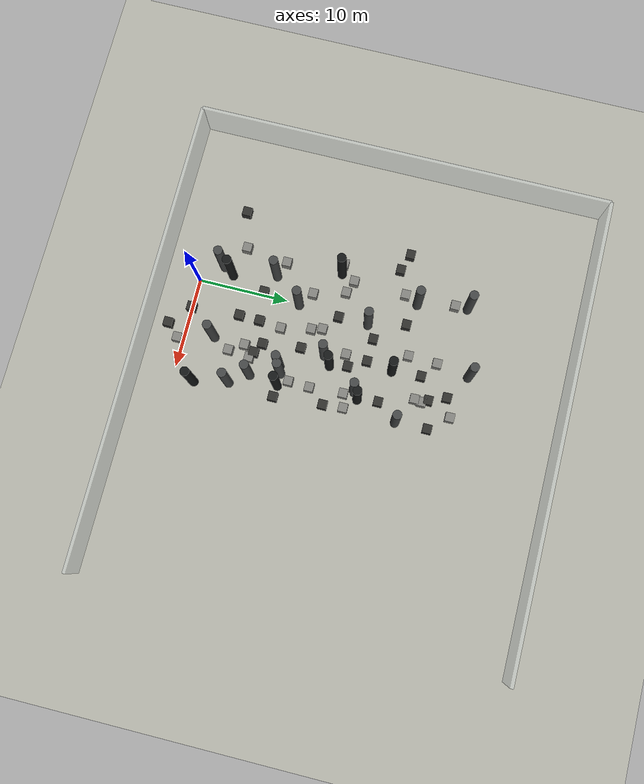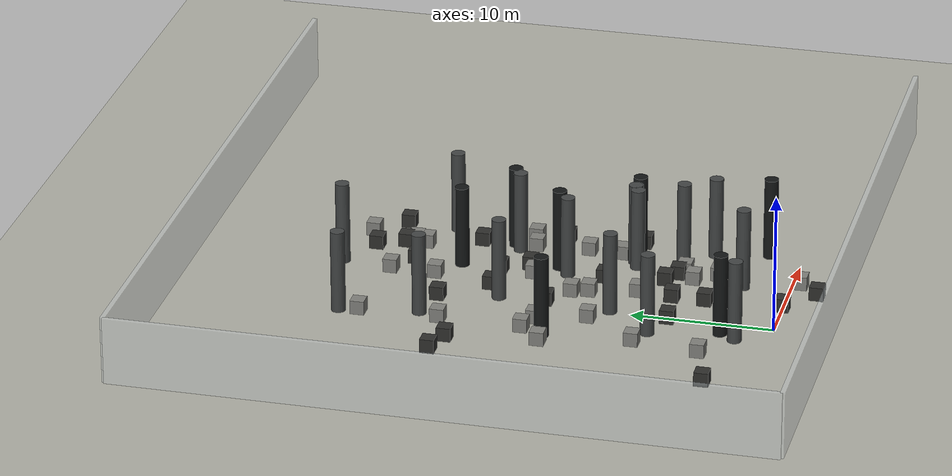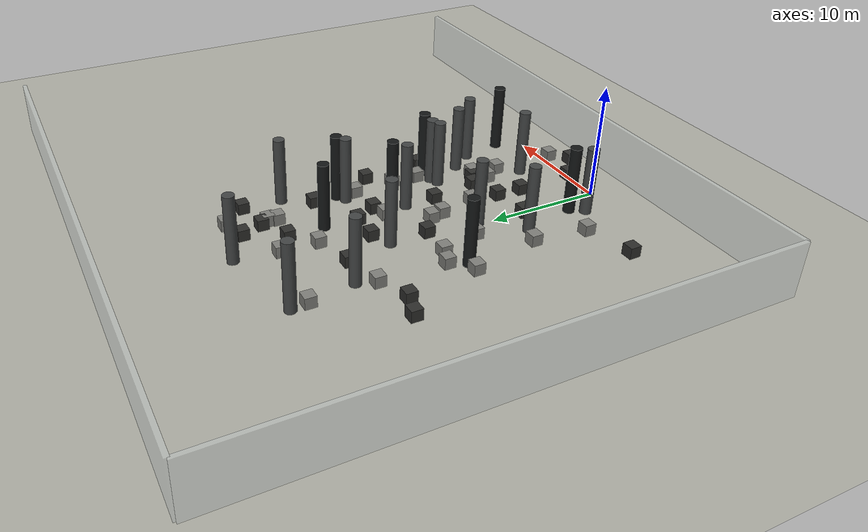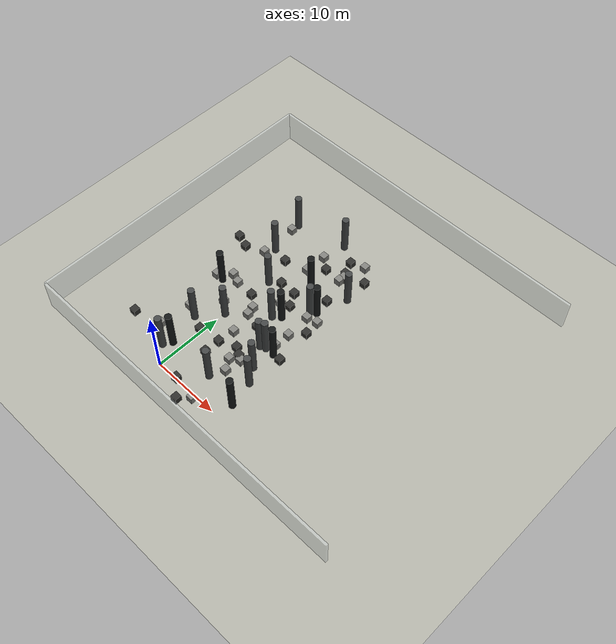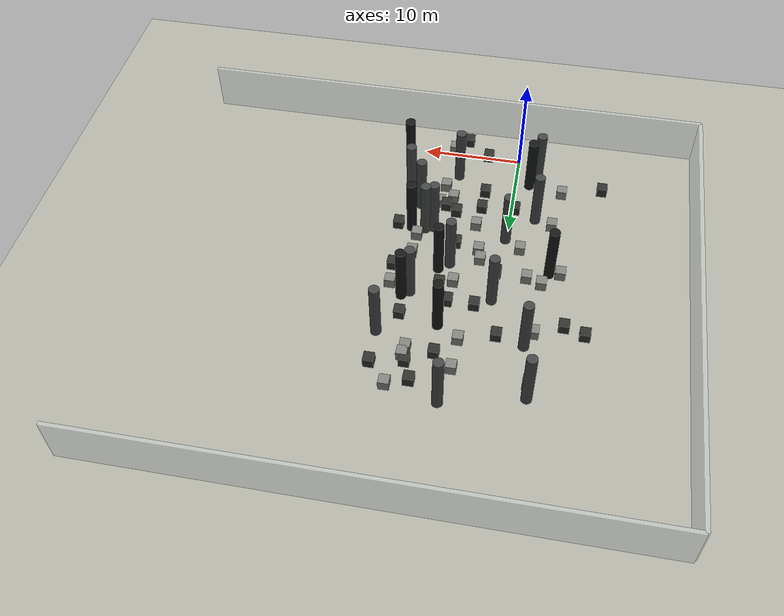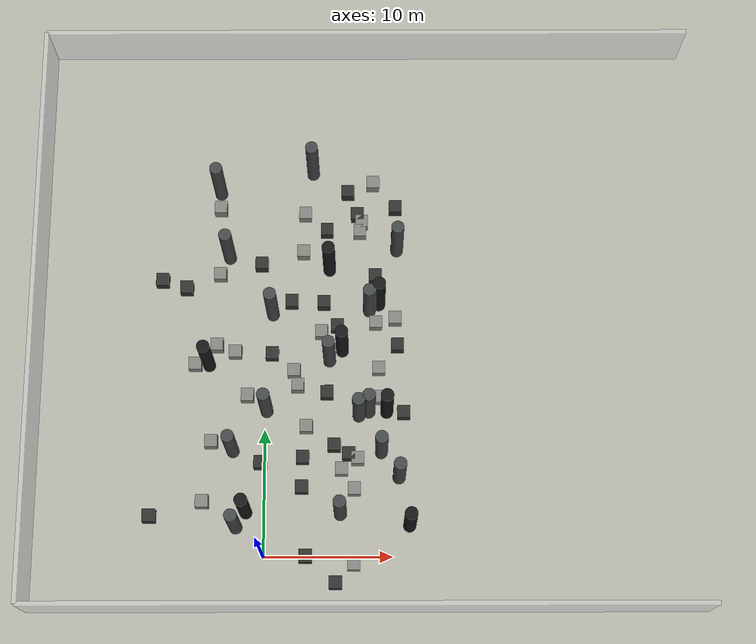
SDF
<sdf version="1.9">
 <world name="sando_forest3_walls_xtd2">
  <model name="ground_plane">
   <static>true</static>
   <link name="link">
    <collision name="collision">
     <geometry><plane><normal>0 0 1</normal><size>120 120</size></plane></geometry>
    </collision>
    <visual name="visual">
     <geometry><plane><normal>0 0 1</normal><size>120 120</size></plane></geometry>
     <material><ambient>0.68 0.68 0.64 1</ambient><diffuse>0.68 0.68 0.64 1</diffuse></material>
    </visual>
   </link>
  </model>
  <model name="struct_pillar_000">
   <static>true</static>
   <pose>9.561 11.396 3.000 0 0 0</pose>
   <link name="link">
    <collision name="collision">
     <geometry><cylinder><radius>0.500</radius><length>6.000</length></cylinder></geometry>
    </collision>
    <visual name="visual">
     <geometry><cylinder><radius>0.500</radius><length>6.000</length></cylinder></geometry>
     <material><ambient>0.08 0.09 0.09 1</ambient><diffuse>0.08 0.09 0.09 1</diffuse></material>
    </visual>
   </link>
  </model>
  <model name="struct_pillar_001">
   <static>true</static>
   <pose>9.126 8.172 3.000 0 0 0</pose>
   <link name="link">
    <collision name="collision">
     <geometry><cylinder><radius>0.500</radius><length>6.000</length></cylinder></geometry>
    </collision>
    <visual name="visual">
     <geometry><cylinder><radius>0.500</radius><length>6.000</length></cylinder></geometry>
     <material><ambient>0.26 0.27 0.27 1</ambient><diffuse>0.26 0.27 0.27 1</diffuse></material>
    </visual>
   </link>
  </model>
  <model name="struct_pillar_002">
   <static>true</static>
   <pose>10.505 6.164 3.000 0 0 0</pose>
   <link name="link">
    <collision name="collision">
     <geometry><cylinder><radius>0.500</radius><length>6.000</length></cylinder></geometry>
    </collision>
    <visual name="visual">
     <geometry><cylinder><radius>0.500</radius><length>6.000</length></cylinder></geometry>
     <material><ambient>0.26 0.27 0.27 1</ambient><diffuse>0.26 0.27 0.27 1</diffuse></material>
    </visual>
   </link>
  </model>
  <model name="struct_pillar_006">
   <static>true</static>
   <pose>11.294 2.418 3.000 0 0 0</pose>
   <link name="link">
    <collision name="collision">
     <geometry><cylinder><radius>0.500</radius><length>6.000</length></cylinder></geometry>
    </collision>
    <visual name="visual">
     <geometry><cylinder><radius>0.500</radius><length>6.000</length></cylinder></geometry>
     <material><ambient>0.08 0.09 0.09 1</ambient><diffuse>0.08 0.09 0.09 1</diffuse></material>
    </visual>
   </link>
  </model>
  <model name="struct_pillar_011">
   <static>true</static>
   <pose>5.940 3.315 3.000 0 0 0</pose>
   <link name="link">
    <collision name="collision">
     <geometry><cylinder><radius>0.500</radius><length>6.000</length></cylinder></geometry>
    </collision>
    <visual name="visual">
     <geometry><cylinder><radius>0.500</radius><length>6.000</length></cylinder></geometry>
     <material><ambient>0.26 0.27 0.27 1</ambient><diffuse>0.26 0.27 0.27 1</diffuse></material>
    </visual>
   </link>
  </model>
  <model name="struct_pillar_013">
   <static>true</static>
   <pose>5.056 15.573 3.000 0 0 0</pose>
   <link name="link">
    <collision name="collision">
     <geometry><cylinder><radius>0.500</radius><length>6.000</length></cylinder></geometry>
    </collision>
    <visual name="visual">
     <geometry><cylinder><radius>0.500</radius><length>6.000</length></cylinder></geometry>
     <material><ambient>0.26 0.27 0.27 1</ambient><diffuse>0.26 0.27 0.27 1</diffuse></material>
    </visual>
   </link>
  </model>
  <model name="struct_pillar_014">
   <static>true</static>
   <pose>8.215 19.708 3.000 0 0 0</pose>
   <link name="link">
    <collision name="collision">
     <geometry><cylinder><radius>0.500</radius><length>6.000</length></cylinder></geometry>
    </collision>
    <visual name="visual">
     <geometry><cylinder><radius>0.500</radius><length>6.000</length></cylinder></geometry>
     <material><ambient>0.26 0.27 0.27 1</ambient><diffuse>0.26 0.27 0.27 1</diffuse></material>
    </visual>
   </link>
  </model>
  <model name="struct_pillar_018">
   <static>true</static>
   <pose>5.020 23.151 3.000 0 0 0</pose>
   <link name="link">
    <collision name="collision">
     <geometry><cylinder><radius>0.500</radius><length>6.000</length></cylinder></geometry>
    </collision>
    <visual name="visual">
     <geometry><cylinder><radius>0.500</radius><length>6.000</length></cylinder></geometry>
     <material><ambient>0.08 0.09 0.09 1</ambient><diffuse>0.08 0.09 0.09 1</diffuse></material>
    </visual>
   </link>
  </model>
  <model name="struct_pillar_019">
   <static>true</static>
   <pose>10.430 24.790 3.000 0 0 0</pose>
   <link name="link">
    <collision name="collision">
     <geometry><cylinder><radius>0.500</radius><length>6.000</length></cylinder></geometry>
    </collision>
    <visual name="visual">
     <geometry><cylinder><radius>0.500</radius><length>6.000</length></cylinder></geometry>
     <material><ambient>0.26 0.27 0.27 1</ambient><diffuse>0.26 0.27 0.27 1</diffuse></material>
    </visual>
   </link>
  </model>
  <model name="struct_pillar_022">
   <static>true</static>
   <pose>0.522 19.400 3.000 0 0 0</pose>
   <link name="link">
    <collision name="collision">
     <geometry><cylinder><radius>0.500</radius><length>6.000</length></cylinder></geometry>
    </collision>
    <visual name="visual">
     <geometry><cylinder><radius>0.500</radius><length>6.000</length></cylinder></geometry>
     <material><ambient>0.26 0.27 0.27 1</ambient><diffuse>0.26 0.27 0.27 1</diffuse></material>
    </visual>
   </link>
  </model>
  <model name="struct_pillar_023">
   <static>true</static>
   <pose>0.138 11.468 3.000 0 0 0</pose>
   <link name="link">
    <collision name="collision">
     <geometry><cylinder><radius>0.500</radius><length>6.000</length></cylinder></geometry>
    </collision>
    <visual name="visual">
     <geometry><cylinder><radius>0.500</radius><length>6.000</length></cylinder></geometry>
     <material><ambient>0.26 0.27 0.27 1</ambient><diffuse>0.26 0.27 0.27 1</diffuse></material>
    </visual>
   </link>
  </model>
  <model name="struct_pillar_024">
   <static>true</static>
   <pose>-4.486 15.211 3.000 0 0 0</pose>
   <link name="link">
    <collision name="collision">
     <geometry><cylinder><radius>0.500</radius><length>6.000</length></cylinder></geometry>
    </collision>
    <visual name="visual">
     <geometry><cylinder><radius>0.500</radius><length>6.000</length></cylinder></geometry>
     <material><ambient>0.08 0.09 0.09 1</ambient><diffuse>0.08 0.09 0.09 1</diffuse></material>
    </visual>
   </link>
  </model>
  <model name="struct_pillar_025">
   <static>true</static>
   <pose>-2.478 8.271 3.000 0 0 0</pose>
   <link name="link">
    <collision name="collision">
     <geometry><cylinder><radius>0.500</radius><length>6.000</length></cylinder></geometry>
    </collision>
    <visual name="visual">
     <geometry><cylinder><radius>0.500</radius><length>6.000</length></cylinder></geometry>
     <material><ambient>0.26 0.27 0.27 1</ambient><diffuse>0.26 0.27 0.27 1</diffuse></material>
    </visual>
   </link>
  </model>
  <model name="struct_pillar_026">
   <static>true</static>
   <pose>-2.134 2.286 3.000 0 0 0</pose>
   <link name="link">
    <collision name="collision">
     <geometry><cylinder><radius>0.500</radius><length>6.000</length></cylinder></geometry>
    </collision>
    <visual name="visual">
     <geometry><cylinder><radius>0.500</radius><length>6.000</length></cylinder></geometry>
     <material><ambient>0.26 0.27 0.27 1</ambient><diffuse>0.26 0.27 0.27 1</diffuse></material>
    </visual>
   </link>
  </model>
  <model name="struct_pillar_028">
   <static>true</static>
   <pose>-3.852 29.699 3.000 0 0 0</pose>
   <link name="link">
    <collision name="collision">
     <geometry><cylinder><radius>0.500</radius><length>6.000</length></cylinder></geometry>
    </collision>
    <visual name="visual">
     <geometry><cylinder><radius>0.500</radius><length>6.000</length></cylinder></geometry>
     <material><ambient>0.26 0.27 0.27 1</ambient><diffuse>0.26 0.27 0.27 1</diffuse></material>
    </visual>
   </link>
  </model>
  <model name="struct_pillar_029">
   <static>true</static>
   <pose>3.662 31.429 3.000 0 0 0</pose>
   <link name="link">
    <collision name="collision">
     <geometry><cylinder><radius>0.500</radius><length>6.000</length></cylinder></geometry>
    </collision>
    <visual name="visual">
     <geometry><cylinder><radius>0.500</radius><length>6.000</length></cylinder></geometry>
     <material><ambient>0.26 0.27 0.27 1</ambient><diffuse>0.26 0.27 0.27 1</diffuse></material>
    </visual>
   </link>
  </model>
  <model name="struct_pillar_032">
   <static>true</static>
   <pose>-3.017 24.173 3.000 0 0 0</pose>
   <link name="link">
    <collision name="collision">
     <geometry><cylinder><radius>0.500</radius><length>6.000</length></cylinder></geometry>
    </collision>
    <visual name="visual">
     <geometry><cylinder><radius>0.500</radius><length>6.000</length></cylinder></geometry>
     <material><ambient>0.26 0.27 0.27 1</ambient><diffuse>0.26 0.27 0.27 1</diffuse></material>
    </visual>
   </link>
  </model>
  <model name="struct_pillar_033">
   <static>true</static>
   <pose>-1.391 3.447 3.000 0 0 0</pose>
   <link name="link">
    <collision name="collision">
     <geometry><cylinder><radius>0.500</radius><length>6.000</length></cylinder></geometry>
    </collision>
    <visual name="visual">
     <geometry><cylinder><radius>0.500</radius><length>6.000</length></cylinder></geometry>
     <material><ambient>0.08 0.09 0.09 1</ambient><diffuse>0.08 0.09 0.09 1</diffuse></material>
    </visual>
   </link>
  </model>
  <model name="struct_pillar_036">
   <static>true</static>
   <pose>8.971 20.227 3.000 0 0 0</pose>
   <link name="link">
    <collision name="collision">
     <geometry><cylinder><radius>0.500</radius><length>6.000</length></cylinder></geometry>
    </collision>
    <visual name="visual">
     <geometry><cylinder><radius>0.500</radius><length>6.000</length></cylinder></geometry>
     <material><ambient>0.08 0.09 0.09 1</ambient><diffuse>0.08 0.09 0.09 1</diffuse></material>
    </visual>
   </link>
  </model>
  <model name="struct_pillar_039">
   <static>true</static>
   <pose>6.059 16.394 3.000 0 0 0</pose>
   <link name="link">
    <collision name="collision">
     <geometry><cylinder><radius>0.500</radius><length>6.000</length></cylinder></geometry>
    </collision>
    <visual name="visual">
     <geometry><cylinder><radius>0.500</radius><length>6.000</length></cylinder></geometry>
     <material><ambient>0.08 0.09 0.09 1</ambient><diffuse>0.08 0.09 0.09 1</diffuse></material>
    </visual>
   </link>
  </model>
  <model name="struct_pillar_040">
   <static>true</static>
   <pose>7.382 11.106 3.000 0 0 0</pose>
   <link name="link">
    <collision name="collision">
     <geometry><cylinder><radius>0.500</radius><length>6.000</length></cylinder></geometry>
    </collision>
    <visual name="visual">
     <geometry><cylinder><radius>0.500</radius><length>6.000</length></cylinder></geometry>
     <material><ambient>0.26 0.27 0.27 1</ambient><diffuse>0.26 0.27 0.27 1</diffuse></material>
    </visual>
   </link>
  </model>
  <model name="struct_pillar_041">
   <static>true</static>
   <pose>8.165 11.423 3.000 0 0 0</pose>
   <link name="link">
    <collision name="collision">
     <geometry><cylinder><radius>0.500</radius><length>6.000</length></cylinder></geometry>
    </collision>
    <visual name="visual">
     <geometry><cylinder><radius>0.500</radius><length>6.000</length></cylinder></geometry>
     <material><ambient>0.26 0.27 0.27 1</ambient><diffuse>0.26 0.27 0.27 1</diffuse></material>
    </visual>
   </link>
  </model>
  <model name="struct_wall_042">
   <static>true</static>
   <pose>10.445 16.734 0.500 0 0 0</pose>
   <link name="link">
    <collision name="collision"><geometry><box><size>1.000 1.000 1.000</size></box></geometry></collision>
    <visual name="visual">
     <geometry><box><size>1.000 1.000 1.000</size></box></geometry>
     <material><ambient>0.18 0.18 0.17 1</ambient><diffuse>0.18 0.18 0.17 1</diffuse></material>
    </visual>
   </link>
  </model>
  <model name="struct_wall_043">
   <static>true</static>
   <pose>8.931 14.858 0.500 0 0 0</pose>
   <link name="link">
    <collision name="collision"><geometry><box><size>1.000 1.000 1.000</size></box></geometry></collision>
    <visual name="visual">
     <geometry><box><size>1.000 1.000 1.000</size></box></geometry>
     <material><ambient>0.50 0.50 0.48 1</ambient><diffuse>0.50 0.50 0.48 1</diffuse></material>
    </visual>
   </link>
  </model>
  <model name="struct_wall_050">
   <static>true</static>
   <pose>2.985 7.695 0.500 0 0 0</pose>
   <link name="link">
    <collision name="collision"><geometry><box><size>1.000 1.000 1.000</size></box></geometry></collision>
    <visual name="visual">
     <geometry><box><size>1.000 1.000 1.000</size></box></geometry>
     <material><ambient>0.18 0.18 0.17 1</ambient><diffuse>0.18 0.18 0.17 1</diffuse></material>
    </visual>
   </link>
  </model>
  <model name="struct_wall_051">
   <static>true</static>
   <pose>-1.405 12.678 0.500 0 0 0</pose>
   <link name="link">
    <collision name="collision"><geometry><box><size>1.000 1.000 1.000</size></box></geometry></collision>
    <visual name="visual">
     <geometry><box><size>1.000 1.000 1.000</size></box></geometry>
     <material><ambient>0.50 0.50 0.48 1</ambient><diffuse>0.50 0.50 0.48 1</diffuse></material>
    </visual>
   </link>
  </model>
  <model name="struct_wall_052">
   <static>true</static>
   <pose>-0.313 7.316 0.500 0 0 0</pose>
   <link name="link">
    <collision name="collision"><geometry><box><size>1.000 1.000 1.000</size></box></geometry></collision>
    <visual name="visual">
     <geometry><box><size>1.000 1.000 1.000</size></box></geometry>
     <material><ambient>0.18 0.18 0.17 1</ambient><diffuse>0.18 0.18 0.17 1</diffuse></material>
    </visual>
   </link>
  </model>
  <model name="struct_wall_053">
   <static>true</static>
   <pose>4.401 17.867 0.500 0 0 0</pose>
   <link name="link">
    <collision name="collision"><geometry><box><size>1.000 1.000 1.000</size></box></geometry></collision>
    <visual name="visual">
     <geometry><box><size>1.000 1.000 1.000</size></box></geometry>
     <material><ambient>0.50 0.50 0.48 1</ambient><diffuse>0.50 0.50 0.48 1</diffuse></material>
    </visual>
   </link>
  </model>
  <model name="struct_wall_054">
   <static>true</static>
   <pose>8.699 22.509 0.500 0 0 0</pose>
   <link name="link">
    <collision name="collision"><geometry><box><size>1.000 1.000 1.000</size></box></geometry></collision>
    <visual name="visual">
     <geometry><box><size>1.000 1.000 1.000</size></box></geometry>
     <material><ambient>0.18 0.18 0.17 1</ambient><diffuse>0.18 0.18 0.17 1</diffuse></material>
    </visual>
   </link>
  </model>
  <model name="struct_wall_055">
   <static>true</static>
   <pose>2.932 24.547 0.500 0 0 0</pose>
   <link name="link">
    <collision name="collision"><geometry><box><size>1.000 1.000 1.000</size></box></geometry></collision>
    <visual name="visual">
     <geometry><box><size>1.000 1.000 1.000</size></box></geometry>
     <material><ambient>0.50 0.50 0.48 1</ambient><diffuse>0.50 0.50 0.48 1</diffuse></material>
    </visual>
   </link>
  </model>
  <model name="struct_wall_056">
   <static>true</static>
   <pose>2.027 20.363 0.500 0 0 0</pose>
   <link name="link">
    <collision name="collision"><geometry><box><size>1.000 1.000 1.000</size></box></geometry></collision>
    <visual name="visual">
     <geometry><box><size>1.000 1.000 1.000</size></box></geometry>
     <material><ambient>0.18 0.18 0.17 1</ambient><diffuse>0.18 0.18 0.17 1</diffuse></material>
    </visual>
   </link>
  </model>
  <model name="struct_wall_057">
   <static>true</static>
   <pose>2.557 13.479 0.500 0 0 0</pose>
   <link name="link">
    <collision name="collision"><geometry><box><size>1.000 1.000 1.000</size></box></geometry></collision>
    <visual name="visual">
     <geometry><box><size>1.000 1.000 1.000</size></box></geometry>
     <material><ambient>0.50 0.50 0.48 1</ambient><diffuse>0.50 0.50 0.48 1</diffuse></material>
    </visual>
   </link>
  </model>
  <model name="struct_wall_066">
   <static>true</static>
   <pose>5.442 8.686 0.500 0 0 0</pose>
   <link name="link">
    <collision name="collision"><geometry><box><size>1.000 1.000 1.000</size></box></geometry></collision>
    <visual name="visual">
     <geometry><box><size>1.000 1.000 1.000</size></box></geometry>
     <material><ambient>0.18 0.18 0.17 1</ambient><diffuse>0.18 0.18 0.17 1</diffuse></material>
    </visual>
   </link>
  </model>
  <model name="struct_wall_067">
   <static>true</static>
   <pose>7.008 5.231 0.500 0 0 0</pose>
   <link name="link">
    <collision name="collision"><geometry><box><size>1.000 1.000 1.000</size></box></geometry></collision>
    <visual name="visual">
     <geometry><box><size>1.000 1.000 1.000</size></box></geometry>
     <material><ambient>0.50 0.50 0.48 1</ambient><diffuse>0.50 0.50 0.48 1</diffuse></material>
    </visual>
   </link>
  </model>
  <model name="struct_wall_068">
   <static>true</static>
   <pose>3.265 0.011 0.500 0 0 0</pose>
   <link name="link">
    <collision name="collision"><geometry><box><size>1.000 1.000 1.000</size></box></geometry></collision>
    <visual name="visual">
     <geometry><box><size>1.000 1.000 1.000</size></box></geometry>
     <material><ambient>0.18 0.18 0.17 1</ambient><diffuse>0.18 0.18 0.17 1</diffuse></material>
    </visual>
   </link>
  </model>
  <model name="struct_wall_069">
   <static>true</static>
   <pose>6.977 -0.585 0.500 0 0 0</pose>
   <link name="link">
    <collision name="collision"><geometry><box><size>1.000 1.000 1.000</size></box></geometry></collision>
    <visual name="visual">
     <geometry><box><size>1.000 1.000 1.000</size></box></geometry>
     <material><ambient>0.50 0.50 0.48 1</ambient><diffuse>0.50 0.50 0.48 1</diffuse></material>
    </visual>
   </link>
  </model>
  <model name="struct_wall_070">
   <static>true</static>
   <pose>5.588 -2.000 0.500 0 0 0</pose>
   <link name="link">
    <collision name="collision"><geometry><box><size>1.000 1.000 1.000</size></box></geometry></collision>
    <visual name="visual">
     <geometry><box><size>1.000 1.000 1.000</size></box></geometry>
     <material><ambient>0.18 0.18 0.17 1</ambient><diffuse>0.18 0.18 0.17 1</diffuse></material>
    </visual>
   </link>
  </model>
  <model name="struct_wall_071">
   <static>true</static>
   <pose>-4.784 4.257 0.500 0 0 0</pose>
   <link name="link">
    <collision name="collision"><geometry><box><size>1.000 1.000 1.000</size></box></geometry></collision>
    <visual name="visual">
     <geometry><box><size>1.000 1.000 1.000</size></box></geometry>
     <material><ambient>0.50 0.50 0.48 1</ambient><diffuse>0.50 0.50 0.48 1</diffuse></material>
    </visual>
   </link>
  </model>
  <model name="struct_wall_072">
   <static>true</static>
   <pose>-8.835 3.134 0.500 0 0 0</pose>
   <link name="link">
    <collision name="collision"><geometry><box><size>1.000 1.000 1.000</size></box></geometry></collision>
    <visual name="visual">
     <geometry><box><size>1.000 1.000 1.000</size></box></geometry>
     <material><ambient>0.18 0.18 0.17 1</ambient><diffuse>0.18 0.18 0.17 1</diffuse></material>
    </visual>
   </link>
  </model>
  <model name="struct_wall_073">
   <static>true</static>
   <pose>-4.178 8.983 0.500 0 0 0</pose>
   <link name="link">
    <collision name="collision"><geometry><box><size>1.000 1.000 1.000</size></box></geometry></collision>
    <visual name="visual">
     <geometry><box><size>1.000 1.000 1.000</size></box></geometry>
     <material><ambient>0.50 0.50 0.48 1</ambient><diffuse>0.50 0.50 0.48 1</diffuse></material>
    </visual>
   </link>
  </model>
  <model name="struct_wall_089">
   <static>true</static>
   <pose>10.257 18.967 0.500 0 0 0</pose>
   <link name="link">
    <collision name="collision"><geometry><box><size>1.000 1.000 1.000</size></box></geometry></collision>
    <visual name="visual">
     <geometry><box><size>1.000 1.000 1.000</size></box></geometry>
     <material><ambient>0.50 0.50 0.48 1</ambient><diffuse>0.50 0.50 0.48 1</diffuse></material>
    </visual>
   </link>
  </model>
  <model name="struct_wall_096">
   <static>true</static>
   <pose>10.882 11.281 0.500 0 0 0</pose>
   <link name="link">
    <collision name="collision"><geometry><box><size>1.000 1.000 1.000</size></box></geometry></collision>
    <visual name="visual">
     <geometry><box><size>1.000 1.000 1.000</size></box></geometry>
     <material><ambient>0.18 0.18 0.17 1</ambient><diffuse>0.18 0.18 0.17 1</diffuse></material>
    </visual>
   </link>
  </model>
  <model name="struct_wall_097">
   <static>true</static>
   <pose>7.290 7.633 0.500 0 0 0</pose>
   <link name="link">
    <collision name="collision"><geometry><box><size>1.000 1.000 1.000</size></box></geometry></collision>
    <visual name="visual">
     <geometry><box><size>1.000 1.000 1.000</size></box></geometry>
     <material><ambient>0.50 0.50 0.48 1</ambient><diffuse>0.50 0.50 0.48 1</diffuse></material>
    </visual>
   </link>
  </model>
  <model name="struct_wall_098">
   <static>true</static>
   <pose>6.584 7.994 0.500 0 0 0</pose>
   <link name="link">
    <collision name="collision"><geometry><box><size>1.000 1.000 1.000</size></box></geometry></collision>
    <visual name="visual">
     <geometry><box><size>1.000 1.000 1.000</size></box></geometry>
     <material><ambient>0.18 0.18 0.17 1</ambient><diffuse>0.18 0.18 0.17 1</diffuse></material>
    </visual>
   </link>
  </model>
  <model name="struct_wall_099">
   <static>true</static>
   <pose>6.025 6.799 0.500 0 0 0</pose>
   <link name="link">
    <collision name="collision"><geometry><box><size>1.000 1.000 1.000</size></box></geometry></collision>
    <visual name="visual">
     <geometry><box><size>1.000 1.000 1.000</size></box></geometry>
     <material><ambient>0.50 0.50 0.48 1</ambient><diffuse>0.50 0.50 0.48 1</diffuse></material>
    </visual>
   </link>
  </model>
  <model name="struct_wall_100">
   <static>true</static>
   <pose>2.929 5.377 0.500 0 0 0</pose>
   <link name="link">
    <collision name="collision"><geometry><box><size>1.000 1.000 1.000</size></box></geometry></collision>
    <visual name="visual">
     <geometry><box><size>1.000 1.000 1.000</size></box></geometry>
     <material><ambient>0.18 0.18 0.17 1</ambient><diffuse>0.18 0.18 0.17 1</diffuse></material>
    </visual>
   </link>
  </model>
  <model name="struct_wall_101">
   <static>true</static>
   <pose>3.244 10.181 0.500 0 0 0</pose>
   <link name="link">
    <collision name="collision"><geometry><box><size>1.000 1.000 1.000</size></box></geometry></collision>
    <visual name="visual">
     <geometry><box><size>1.000 1.000 1.000</size></box></geometry>
     <material><ambient>0.50 0.50 0.48 1</ambient><diffuse>0.50 0.50 0.48 1</diffuse></material>
    </visual>
   </link>
  </model>
  <model name="struct_wall_102">
   <static>true</static>
   <pose>4.869 12.895 0.500 0 0 0</pose>
   <link name="link">
    <collision name="collision"><geometry><box><size>1.000 1.000 1.000</size></box></geometry></collision>
    <visual name="visual">
     <geometry><box><size>1.000 1.000 1.000</size></box></geometry>
     <material><ambient>0.18 0.18 0.17 1</ambient><diffuse>0.18 0.18 0.17 1</diffuse></material>
    </visual>
   </link>
  </model>
  <model name="struct_wall_103">
   <static>true</static>
   <pose>-2.415 16.218 0.500 0 0 0</pose>
   <link name="link">
    <collision name="collision"><geometry><box><size>1.000 1.000 1.000</size></box></geometry></collision>
    <visual name="visual">
     <geometry><box><size>1.000 1.000 1.000</size></box></geometry>
     <material><ambient>0.50 0.50 0.48 1</ambient><diffuse>0.50 0.50 0.48 1</diffuse></material>
    </visual>
   </link>
  </model>
  <model name="struct_wall_104">
   <static>true</static>
   <pose>0.505 16.072 0.500 0 0 0</pose>
   <link name="link">
    <collision name="collision"><geometry><box><size>1.000 1.000 1.000</size></box></geometry></collision>
    <visual name="visual">
     <geometry><box><size>1.000 1.000 1.000</size></box></geometry>
     <material><ambient>0.18 0.18 0.17 1</ambient><diffuse>0.18 0.18 0.17 1</diffuse></material>
    </visual>
   </link>
  </model>
  <model name="struct_wall_105">
   <static>true</static>
   <pose>2.252 14.669 0.500 0 0 0</pose>
   <link name="link">
    <collision name="collision"><geometry><box><size>1.000 1.000 1.000</size></box></geometry></collision>
    <visual name="visual">
     <geometry><box><size>1.000 1.000 1.000</size></box></geometry>
     <material><ambient>0.50 0.50 0.48 1</ambient><diffuse>0.50 0.50 0.48 1</diffuse></material>
    </visual>
   </link>
  </model>
  <model name="struct_wall_106">
   <static>true</static>
   <pose>4.817 26.406 0.500 0 0 0</pose>
   <link name="link">
    <collision name="collision"><geometry><box><size>1.000 1.000 1.000</size></box></geometry></collision>
    <visual name="visual">
     <geometry><box><size>1.000 1.000 1.000</size></box></geometry>
     <material><ambient>0.18 0.18 0.17 1</ambient><diffuse>0.18 0.18 0.17 1</diffuse></material>
    </visual>
   </link>
  </model>
  <model name="struct_wall_107">
   <static>true</static>
   <pose>7.586 27.093 0.500 0 0 0</pose>
   <link name="link">
    <collision name="collision"><geometry><box><size>1.000 1.000 1.000</size></box></geometry></collision>
    <visual name="visual">
     <geometry><box><size>1.000 1.000 1.000</size></box></geometry>
     <material><ambient>0.50 0.50 0.48 1</ambient><diffuse>0.50 0.50 0.48 1</diffuse></material>
    </visual>
   </link>
  </model>
  <model name="struct_wall_109">
   <static>true</static>
   <pose>8.524 30.438 0.500 0 0 0</pose>
   <link name="link">
    <collision name="collision"><geometry><box><size>1.000 1.000 1.000</size></box></geometry></collision>
    <visual name="visual">
     <geometry><box><size>1.000 1.000 1.000</size></box></geometry>
     <material><ambient>0.50 0.50 0.48 1</ambient><diffuse>0.50 0.50 0.48 1</diffuse></material>
    </visual>
   </link>
  </model>
  <model name="struct_wall_112">
   <static>true</static>
   <pose>10.325 28.338 0.500 0 0 0</pose>
   <link name="link">
    <collision name="collision"><geometry><box><size>1.000 1.000 1.000</size></box></geometry></collision>
    <visual name="visual">
     <geometry><box><size>1.000 1.000 1.000</size></box></geometry>
     <material><ambient>0.18 0.18 0.17 1</ambient><diffuse>0.18 0.18 0.17 1</diffuse></material>
    </visual>
   </link>
  </model>
  <model name="struct_wall_114">
   <static>true</static>
   <pose>6.482 29.676 0.500 0 0 0</pose>
   <link name="link">
    <collision name="collision"><geometry><box><size>1.000 1.000 1.000</size></box></geometry></collision>
    <visual name="visual">
     <geometry><box><size>1.000 1.000 1.000</size></box></geometry>
     <material><ambient>0.18 0.18 0.17 1</ambient><diffuse>0.18 0.18 0.17 1</diffuse></material>
    </visual>
   </link>
  </model>
  <model name="struct_wall_115">
   <static>true</static>
   <pose>7.460 26.272 0.500 0 0 0</pose>
   <link name="link">
    <collision name="collision"><geometry><box><size>1.000 1.000 1.000</size></box></geometry></collision>
    <visual name="visual">
     <geometry><box><size>1.000 1.000 1.000</size></box></geometry>
     <material><ambient>0.50 0.50 0.48 1</ambient><diffuse>0.50 0.50 0.48 1</diffuse></material>
    </visual>
   </link>
  </model>
  <model name="struct_wall_116">
   <static>true</static>
   <pose>7.246 27.756 0.500 0 0 0</pose>
   <link name="link">
    <collision name="collision"><geometry><box><size>1.000 1.000 1.000</size></box></geometry></collision>
    <visual name="visual">
     <geometry><box><size>1.000 1.000 1.000</size></box></geometry>
     <material><ambient>0.18 0.18 0.17 1</ambient><diffuse>0.18 0.18 0.17 1</diffuse></material>
    </visual>
   </link>
  </model>
  <model name="struct_wall_117">
   <static>true</static>
   <pose>3.051 27.787 0.500 0 0 0</pose>
   <link name="link">
    <collision name="collision"><geometry><box><size>1.000 1.000 1.000</size></box></geometry></collision>
    <visual name="visual">
     <geometry><box><size>1.000 1.000 1.000</size></box></geometry>
     <material><ambient>0.50 0.50 0.48 1</ambient><diffuse>0.50 0.50 0.48 1</diffuse></material>
    </visual>
   </link>
  </model>
  <model name="struct_wall_118">
   <static>true</static>
   <pose>4.594 20.292 0.500 0 0 0</pose>
   <link name="link">
    <collision name="collision"><geometry><box><size>1.000 1.000 1.000</size></box></geometry></collision>
    <visual name="visual">
     <geometry><box><size>1.000 1.000 1.000</size></box></geometry>
     <material><ambient>0.18 0.18 0.17 1</ambient><diffuse>0.18 0.18 0.17 1</diffuse></material>
    </visual>
   </link>
  </model>
  <model name="struct_wall_119">
   <static>true</static>
   <pose>8.712 18.605 0.500 0 0 0</pose>
   <link name="link">
    <collision name="collision"><geometry><box><size>1.000 1.000 1.000</size></box></geometry></collision>
    <visual name="visual">
     <geometry><box><size>1.000 1.000 1.000</size></box></geometry>
     <material><ambient>0.50 0.50 0.48 1</ambient><diffuse>0.50 0.50 0.48 1</diffuse></material>
    </visual>
   </link>
  </model>
  <model name="struct_wall_120">
   <static>true</static>
   <pose>5.666 18.361 0.500 0 0 0</pose>
   <link name="link">
    <collision name="collision"><geometry><box><size>1.000 1.000 1.000</size></box></geometry></collision>
    <visual name="visual">
     <geometry><box><size>1.000 1.000 1.000</size></box></geometry>
     <material><ambient>0.18 0.18 0.17 1</ambient><diffuse>0.18 0.18 0.17 1</diffuse></material>
    </visual>
   </link>
  </model>
  <model name="struct_wall_121">
   <static>true</static>
   <pose>-3.735 22.663 0.500 0 0 0</pose>
   <link name="link">
    <collision name="collision"><geometry><box><size>1.000 1.000 1.000</size></box></geometry></collision>
    <visual name="visual">
     <geometry><box><size>1.000 1.000 1.000</size></box></geometry>
     <material><ambient>0.50 0.50 0.48 1</ambient><diffuse>0.50 0.50 0.48 1</diffuse></material>
    </visual>
   </link>
  </model>
  <model name="struct_wall_122">
   <static>true</static>
   <pose>-0.419 23.527 0.500 0 0 0</pose>
   <link name="link">
    <collision name="collision"><geometry><box><size>1.000 1.000 1.000</size></box></geometry></collision>
    <visual name="visual">
     <geometry><box><size>1.000 1.000 1.000</size></box></geometry>
     <material><ambient>0.18 0.18 0.17 1</ambient><diffuse>0.18 0.18 0.17 1</diffuse></material>
    </visual>
   </link>
  </model>
  <model name="struct_wall_123">
   <static>true</static>
   <pose>-3.810 28.282 0.500 0 0 0</pose>
   <link name="link">
    <collision name="collision"><geometry><box><size>1.000 1.000 1.000</size></box></geometry></collision>
    <visual name="visual">
     <geometry><box><size>1.000 1.000 1.000</size></box></geometry>
     <material><ambient>0.50 0.50 0.48 1</ambient><diffuse>0.50 0.50 0.48 1</diffuse></material>
    </visual>
   </link>
  </model>
  <model name="struct_wall_124">
   <static>true</static>
   <pose>-8.356 22.153 0.500 0 0 0</pose>
   <link name="link">
    <collision name="collision"><geometry><box><size>1.000 1.000 1.000</size></box></geometry></collision>
    <visual name="visual">
     <geometry><box><size>1.000 1.000 1.000</size></box></geometry>
     <material><ambient>0.18 0.18 0.17 1</ambient><diffuse>0.18 0.18 0.17 1</diffuse></material>
    </visual>
   </link>
  </model>
  <model name="struct_wall_125">
   <static>true</static>
   <pose>-5.562 15.212 0.500 0 0 0</pose>
   <link name="link">
    <collision name="collision"><geometry><box><size>1.000 1.000 1.000</size></box></geometry></collision>
    <visual name="visual">
     <geometry><box><size>1.000 1.000 1.000</size></box></geometry>
     <material><ambient>0.50 0.50 0.48 1</ambient><diffuse>0.50 0.50 0.48 1</diffuse></material>
    </visual>
   </link>
  </model>
  <model name="struct_wall_126">
   <static>true</static>
   <pose>-6.408 21.497 0.500 0 0 0</pose>
   <link name="link">
    <collision name="collision"><geometry><box><size>1.000 1.000 1.000</size></box></geometry></collision>
    <visual name="visual">
     <geometry><box><size>1.000 1.000 1.000</size></box></geometry>
     <material><ambient>0.18 0.18 0.17 1</ambient><diffuse>0.18 0.18 0.17 1</diffuse></material>
    </visual>
   </link>
  </model>
  <model name="struct_wall_127">
   <static>true</static>
   <pose>-3.880 16.777 0.500 0 0 0</pose>
   <link name="link">
    <collision name="collision"><geometry><box><size>1.000 1.000 1.000</size></box></geometry></collision>
    <visual name="visual">
     <geometry><box><size>1.000 1.000 1.000</size></box></geometry>
     <material><ambient>0.50 0.50 0.48 1</ambient><diffuse>0.50 0.50 0.48 1</diffuse></material>
    </visual>
   </link>
  </model>
  <model name="struct_wall_141">
   <static>true</static>
   <pose>8.825 12.491 0.500 0 0 0</pose>
   <link name="link">
    <collision name="collision"><geometry><box><size>1.000 1.000 1.000</size></box></geometry></collision>
    <visual name="visual">
     <geometry><box><size>1.000 1.000 1.000</size></box></geometry>
     <material><ambient>0.50 0.50 0.48 1</ambient><diffuse>0.50 0.50 0.48 1</diffuse></material>
    </visual>
   </link>
  </model>
  <model name="outer_boundary_south">
   <static>true</static>
   <pose>8.000 -4.000 2.400 0 0 0</pose>
   <link name="link">
    <collision name="collision"><geometry><box><size>52.000 0.350 4.800</size></box></geometry></collision>
    <visual name="visual">
     <transparency>0.65</transparency>
     <geometry><box><size>52.000 0.350 4.800</size></box></geometry>
     <material><ambient>0.82 0.86 0.88 0.35</ambient><diffuse>0.82 0.86 0.88 0.35</diffuse></material>
    </visual>
   </link>
  </model>
  <model name="outer_boundary_north">
   <static>true</static>
   <pose>8.000 42.000 2.400 0 0 0</pose>
   <link name="link">
    <collision name="collision"><geometry><box><size>52.000 0.350 4.800</size></box></geometry></collision>
    <visual name="visual">
     <transparency>0.65</transparency>
     <geometry><box><size>52.000 0.350 4.800</size></box></geometry>
     <material><ambient>0.82 0.86 0.88 0.35</ambient><diffuse>0.82 0.86 0.88 0.35</diffuse></material>
    </visual>
   </link>
  </model>
  <model name="outer_boundary_west">
   <static>true</static>
   <pose>-18.000 19.000 2.400 0 0 0</pose>
   <link name="link">
    <collision name="collision"><geometry><box><size>0.350 46.000 4.800</size></box></geometry></collision>
    <visual name="visual">
     <transparency>0.65</transparency>
     <geometry><box><size>0.350 46.000 4.800</size></box></geometry>
     <material><ambient>0.82 0.86 0.88 0.35</ambient><diffuse>0.82 0.86 0.88 0.35</diffuse></material>
    </visual>
   </link>
  </model>
 </world>
</sdf>
